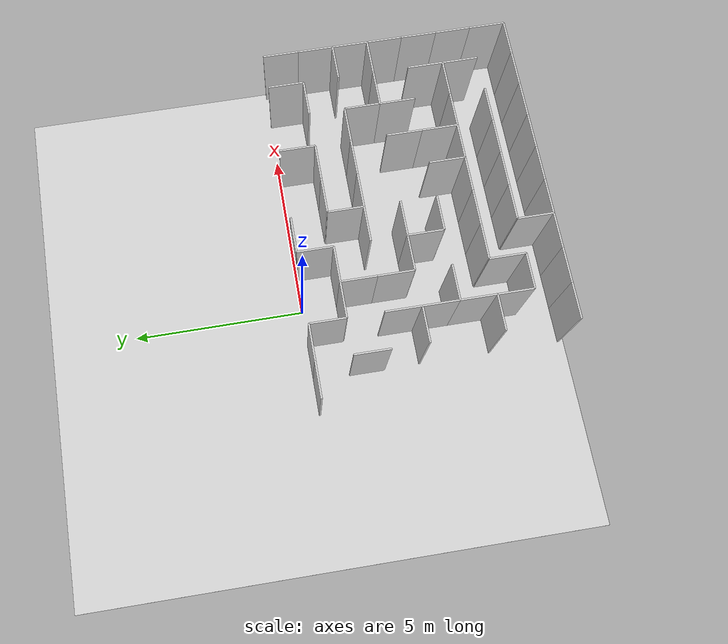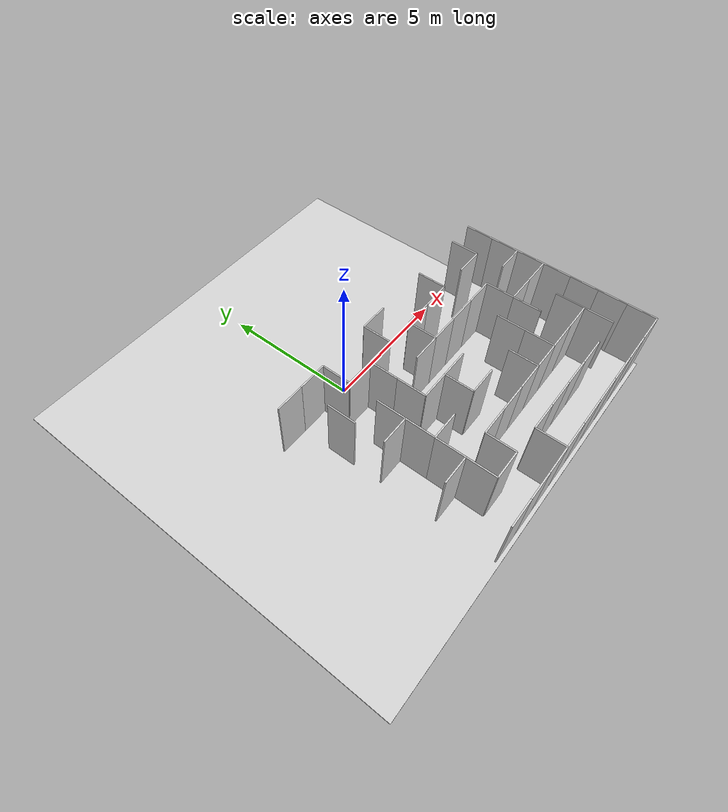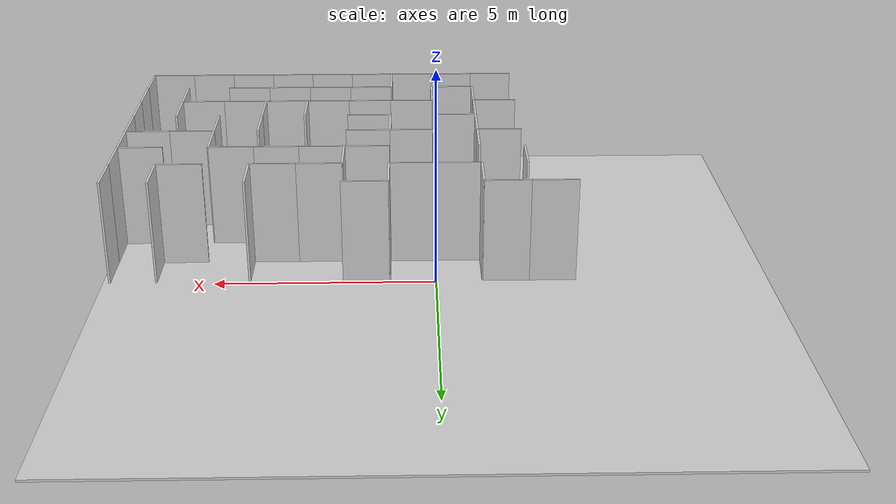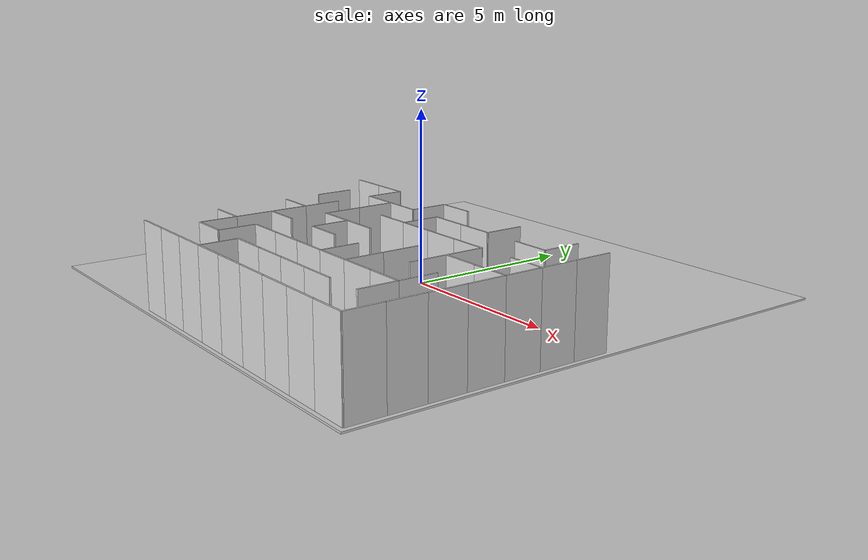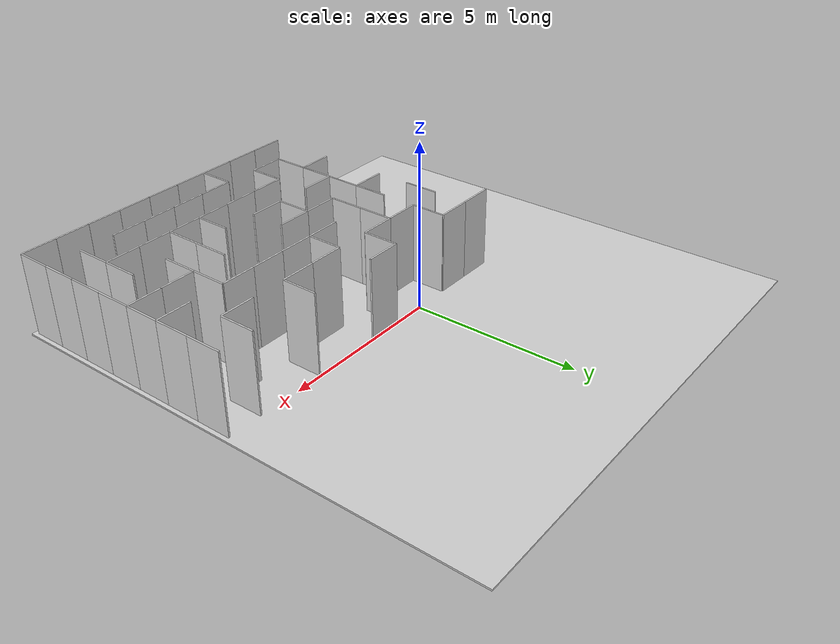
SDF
<sdf version="1.10">
 <world name="nidar_layer1_maze">
  <model name="floor">
   <static>true</static>
   <pose>0.0000 0.0000 0.0250 0 0 0</pose>
   <link name="link">
    <collision name="collision"><geometry><box><size>15.0000 15.0000 0.0500</size></box></geometry></collision>
    <visual name="visual">
     <geometry><box><size>15.0000 15.0000 0.0500</size></box></geometry>
     <material><ambient>0.72 0.72 0.72 1</ambient><diffuse>0.82 0.82 0.82 1</diffuse></material>
    </visual>
   </link>
  </model>
  <model name="vwall_08_00">
   <static>true</static>
   <pose>1.0500 -6.8250 1.2500 0 0 0</pose>
   <link name="link">
    <collision name="collision"><geometry><box><size>0.0500 1.0500 2.5000</size></box></geometry></collision>
    <visual name="visual">
     <geometry><box><size>0.0500 1.0500 2.5000</size></box></geometry>
     <material><ambient>0.72 0.72 0.72 1</ambient><diffuse>0.82 0.82 0.82 1</diffuse></material>
    </visual>
   </link>
  </model>
  <model name="vwall_14_00">
   <static>true</static>
   <pose>7.3500 -6.8250 1.2500 0 0 0</pose>
   <link name="link">
    <collision name="collision"><geometry><box><size>0.0500 1.0500 2.5000</size></box></geometry></collision>
    <visual name="visual">
     <geometry><box><size>0.0500 1.0500 2.5000</size></box></geometry>
     <material><ambient>0.72 0.72 0.72 1</ambient><diffuse>0.82 0.82 0.82 1</diffuse></material>
    </visual>
   </link>
  </model>
  <model name="vwall_06_01">
   <static>true</static>
   <pose>-1.0500 -5.7750 1.2500 0 0 0</pose>
   <link name="link">
    <collision name="collision"><geometry><box><size>0.0500 1.0500 2.5000</size></box></geometry></collision>
    <visual name="visual">
     <geometry><box><size>0.0500 1.0500 2.5000</size></box></geometry>
     <material><ambient>0.72 0.72 0.72 1</ambient><diffuse>0.82 0.82 0.82 1</diffuse></material>
    </visual>
   </link>
  </model>
  <model name="vwall_07_01">
   <static>true</static>
   <pose>0.0000 -5.7750 1.2500 0 0 0</pose>
   <link name="link">
    <collision name="collision"><geometry><box><size>0.0500 1.0500 2.5000</size></box></geometry></collision>
    <visual name="visual">
     <geometry><box><size>0.0500 1.0500 2.5000</size></box></geometry>
     <material><ambient>0.72 0.72 0.72 1</ambient><diffuse>0.82 0.82 0.82 1</diffuse></material>
    </visual>
   </link>
  </model>
  <model name="vwall_13_01">
   <static>true</static>
   <pose>6.3000 -5.7750 1.2500 0 0 0</pose>
   <link name="link">
    <collision name="collision"><geometry><box><size>0.0500 1.0500 2.5000</size></box></geometry></collision>
    <visual name="visual">
     <geometry><box><size>0.0500 1.0500 2.5000</size></box></geometry>
     <material><ambient>0.72 0.72 0.72 1</ambient><diffuse>0.82 0.82 0.82 1</diffuse></material>
    </visual>
   </link>
  </model>
  <model name="vwall_14_01">
   <static>true</static>
   <pose>7.3500 -5.7750 1.2500 0 0 0</pose>
   <link name="link">
    <collision name="collision"><geometry><box><size>0.0500 1.0500 2.5000</size></box></geometry></collision>
    <visual name="visual">
     <geometry><box><size>0.0500 1.0500 2.5000</size></box></geometry>
     <material><ambient>0.72 0.72 0.72 1</ambient><diffuse>0.82 0.82 0.82 1</diffuse></material>
    </visual>
   </link>
  </model>
  <model name="vwall_06_02">
   <static>true</static>
   <pose>-1.0500 -4.7250 1.2500 0 0 0</pose>
   <link name="link">
    <collision name="collision"><geometry><box><size>0.0500 1.0500 2.5000</size></box></geometry></collision>
    <visual name="visual">
     <geometry><box><size>0.0500 1.0500 2.5000</size></box></geometry>
     <material><ambient>0.72 0.72 0.72 1</ambient><diffuse>0.82 0.82 0.82 1</diffuse></material>
    </visual>
   </link>
  </model>
  <model name="vwall_10_02">
   <static>true</static>
   <pose>3.1500 -4.7250 1.2500 0 0 0</pose>
   <link name="link">
    <collision name="collision"><geometry><box><size>0.0500 1.0500 2.5000</size></box></geometry></collision>
    <visual name="visual">
     <geometry><box><size>0.0500 1.0500 2.5000</size></box></geometry>
     <material><ambient>0.72 0.72 0.72 1</ambient><diffuse>0.82 0.82 0.82 1</diffuse></material>
    </visual>
   </link>
  </model>
  <model name="vwall_11_02">
   <static>true</static>
   <pose>4.2000 -4.7250 1.2500 0 0 0</pose>
   <link name="link">
    <collision name="collision"><geometry><box><size>0.0500 1.0500 2.5000</size></box></geometry></collision>
    <visual name="visual">
     <geometry><box><size>0.0500 1.0500 2.5000</size></box></geometry>
     <material><ambient>0.72 0.72 0.72 1</ambient><diffuse>0.82 0.82 0.82 1</diffuse></material>
    </visual>
   </link>
  </model>
  <model name="vwall_13_02">
   <static>true</static>
   <pose>6.3000 -4.7250 1.2500 0 0 0</pose>
   <link name="link">
    <collision name="collision"><geometry><box><size>0.0500 1.0500 2.5000</size></box></geometry></collision>
    <visual name="visual">
     <geometry><box><size>0.0500 1.0500 2.5000</size></box></geometry>
     <material><ambient>0.72 0.72 0.72 1</ambient><diffuse>0.82 0.82 0.82 1</diffuse></material>
    </visual>
   </link>
  </model>
  <model name="vwall_14_02">
   <static>true</static>
   <pose>7.3500 -4.7250 1.2500 0 0 0</pose>
   <link name="link">
    <collision name="collision"><geometry><box><size>0.0500 1.0500 2.5000</size></box></geometry></collision>
    <visual name="visual">
     <geometry><box><size>0.0500 1.0500 2.5000</size></box></geometry>
     <material><ambient>0.72 0.72 0.72 1</ambient><diffuse>0.82 0.82 0.82 1</diffuse></material>
    </visual>
   </link>
  </model>
  <model name="vwall_06_03">
   <static>true</static>
   <pose>-1.0500 -3.6750 1.2500 0 0 0</pose>
   <link name="link">
    <collision name="collision"><geometry><box><size>0.0500 1.0500 2.5000</size></box></geometry></collision>
    <visual name="visual">
     <geometry><box><size>0.0500 1.0500 2.5000</size></box></geometry>
     <material><ambient>0.72 0.72 0.72 1</ambient><diffuse>0.82 0.82 0.82 1</diffuse></material>
    </visual>
   </link>
  </model>
  <model name="vwall_08_03">
   <static>true</static>
   <pose>1.0500 -3.6750 1.2500 0 0 0</pose>
   <link name="link">
    <collision name="collision"><geometry><box><size>0.0500 1.0500 2.5000</size></box></geometry></collision>
    <visual name="visual">
     <geometry><box><size>0.0500 1.0500 2.5000</size></box></geometry>
     <material><ambient>0.72 0.72 0.72 1</ambient><diffuse>0.82 0.82 0.82 1</diffuse></material>
    </visual>
   </link>
  </model>
  <model name="vwall_11_03">
   <static>true</static>
   <pose>4.2000 -3.6750 1.2500 0 0 0</pose>
   <link name="link">
    <collision name="collision"><geometry><box><size>0.0500 1.0500 2.5000</size></box></geometry></collision>
    <visual name="visual">
     <geometry><box><size>0.0500 1.0500 2.5000</size></box></geometry>
     <material><ambient>0.72 0.72 0.72 1</ambient><diffuse>0.82 0.82 0.82 1</diffuse></material>
    </visual>
   </link>
  </model>
  <model name="vwall_12_03">
   <static>true</static>
   <pose>5.2500 -3.6750 1.2500 0 0 0</pose>
   <link name="link">
    <collision name="collision"><geometry><box><size>0.0500 1.0500 2.5000</size></box></geometry></collision>
    <visual name="visual">
     <geometry><box><size>0.0500 1.0500 2.5000</size></box></geometry>
     <material><ambient>0.72 0.72 0.72 1</ambient><diffuse>0.82 0.82 0.82 1</diffuse></material>
    </visual>
   </link>
  </model>
  <model name="vwall_14_03">
   <static>true</static>
   <pose>7.3500 -3.6750 1.2500 0 0 0</pose>
   <link name="link">
    <collision name="collision"><geometry><box><size>0.0500 1.0500 2.5000</size></box></geometry></collision>
    <visual name="visual">
     <geometry><box><size>0.0500 1.0500 2.5000</size></box></geometry>
     <material><ambient>0.72 0.72 0.72 1</ambient><diffuse>0.82 0.82 0.82 1</diffuse></material>
    </visual>
   </link>
  </model>
  <model name="vwall_06_04">
   <static>true</static>
   <pose>-1.0500 -2.6250 1.2500 0 0 0</pose>
   <link name="link">
    <collision name="collision"><geometry><box><size>0.0500 1.0500 2.5000</size></box></geometry></collision>
    <visual name="visual">
     <geometry><box><size>0.0500 1.0500 2.5000</size></box></geometry>
     <material><ambient>0.72 0.72 0.72 1</ambient><diffuse>0.82 0.82 0.82 1</diffuse></material>
    </visual>
   </link>
  </model>
  <model name="vwall_07_04">
   <static>true</static>
   <pose>0.0000 -2.6250 1.2500 0 0 0</pose>
   <link name="link">
    <collision name="collision"><geometry><box><size>0.0500 1.0500 2.5000</size></box></geometry></collision>
    <visual name="visual">
     <geometry><box><size>0.0500 1.0500 2.5000</size></box></geometry>
     <material><ambient>0.72 0.72 0.72 1</ambient><diffuse>0.82 0.82 0.82 1</diffuse></material>
    </visual>
   </link>
  </model>
  <model name="vwall_12_04">
   <static>true</static>
   <pose>5.2500 -2.6250 1.2500 0 0 0</pose>
   <link name="link">
    <collision name="collision"><geometry><box><size>0.0500 1.0500 2.5000</size></box></geometry></collision>
    <visual name="visual">
     <geometry><box><size>0.0500 1.0500 2.5000</size></box></geometry>
     <material><ambient>0.72 0.72 0.72 1</ambient><diffuse>0.82 0.82 0.82 1</diffuse></material>
    </visual>
   </link>
  </model>
  <model name="vwall_14_04">
   <static>true</static>
   <pose>7.3500 -2.6250 1.2500 0 0 0</pose>
   <link name="link">
    <collision name="collision"><geometry><box><size>0.0500 1.0500 2.5000</size></box></geometry></collision>
    <visual name="visual">
     <geometry><box><size>0.0500 1.0500 2.5000</size></box></geometry>
     <material><ambient>0.72 0.72 0.72 1</ambient><diffuse>0.82 0.82 0.82 1</diffuse></material>
    </visual>
   </link>
  </model>
  <model name="vwall_05_05">
   <static>true</static>
   <pose>-2.1000 -1.5750 1.2500 0 0 0</pose>
   <link name="link">
    <collision name="collision"><geometry><box><size>0.0500 1.0500 2.5000</size></box></geometry></collision>
    <visual name="visual">
     <geometry><box><size>0.0500 1.0500 2.5000</size></box></geometry>
     <material><ambient>0.72 0.72 0.72 1</ambient><diffuse>0.82 0.82 0.82 1</diffuse></material>
    </visual>
   </link>
  </model>
  <model name="vwall_07_05">
   <static>true</static>
   <pose>0.0000 -1.5750 1.2500 0 0 0</pose>
   <link name="link">
    <collision name="collision"><geometry><box><size>0.0500 1.0500 2.5000</size></box></geometry></collision>
    <visual name="visual">
     <geometry><box><size>0.0500 1.0500 2.5000</size></box></geometry>
     <material><ambient>0.72 0.72 0.72 1</ambient><diffuse>0.82 0.82 0.82 1</diffuse></material>
    </visual>
   </link>
  </model>
  <model name="vwall_09_05">
   <static>true</static>
   <pose>2.1000 -1.5750 1.2500 0 0 0</pose>
   <link name="link">
    <collision name="collision"><geometry><box><size>0.0500 1.0500 2.5000</size></box></geometry></collision>
    <visual name="visual">
     <geometry><box><size>0.0500 1.0500 2.5000</size></box></geometry>
     <material><ambient>0.72 0.72 0.72 1</ambient><diffuse>0.82 0.82 0.82 1</diffuse></material>
    </visual>
   </link>
  </model>
  <model name="vwall_14_05">
   <static>true</static>
   <pose>7.3500 -1.5750 1.2500 0 0 0</pose>
   <link name="link">
    <collision name="collision"><geometry><box><size>0.0500 1.0500 2.5000</size></box></geometry></collision>
    <visual name="visual">
     <geometry><box><size>0.0500 1.0500 2.5000</size></box></geometry>
     <material><ambient>0.72 0.72 0.72 1</ambient><diffuse>0.82 0.82 0.82 1</diffuse></material>
    </visual>
   </link>
  </model>
  <model name="vwall_06_06">
   <static>true</static>
   <pose>-1.0500 -0.5250 1.2500 0 0 0</pose>
   <link name="link">
    <collision name="collision"><geometry><box><size>0.0500 1.0500 2.5000</size></box></geometry></collision>
    <visual name="visual">
     <geometry><box><size>0.0500 1.0500 2.5000</size></box></geometry>
     <material><ambient>0.72 0.72 0.72 1</ambient><diffuse>0.82 0.82 0.82 1</diffuse></material>
    </visual>
   </link>
  </model>
  <model name="vwall_08_06">
   <static>true</static>
   <pose>1.0500 -0.5250 1.2500 0 0 0</pose>
   <link name="link">
    <collision name="collision"><geometry><box><size>0.0500 1.0500 2.5000</size></box></geometry></collision>
    <visual name="visual">
     <geometry><box><size>0.0500 1.0500 2.5000</size></box></geometry>
     <material><ambient>0.72 0.72 0.72 1</ambient><diffuse>0.82 0.82 0.82 1</diffuse></material>
    </visual>
   </link>
  </model>
  <model name="vwall_11_06">
   <static>true</static>
   <pose>4.2000 -0.5250 1.2500 0 0 0</pose>
   <link name="link">
    <collision name="collision"><geometry><box><size>0.0500 1.0500 2.5000</size></box></geometry></collision>
    <visual name="visual">
     <geometry><box><size>0.0500 1.0500 2.5000</size></box></geometry>
     <material><ambient>0.72 0.72 0.72 1</ambient><diffuse>0.82 0.82 0.82 1</diffuse></material>
    </visual>
   </link>
  </model>
  <model name="vwall_13_06">
   <static>true</static>
   <pose>6.3000 -0.5250 1.2500 0 0 0</pose>
   <link name="link">
    <collision name="collision"><geometry><box><size>0.0500 1.0500 2.5000</size></box></geometry></collision>
    <visual name="visual">
     <geometry><box><size>0.0500 1.0500 2.5000</size></box></geometry>
     <material><ambient>0.72 0.72 0.72 1</ambient><diffuse>0.82 0.82 0.82 1</diffuse></material>
    </visual>
   </link>
  </model>
  <model name="vwall_14_06">
   <static>true</static>
   <pose>7.3500 -0.5250 1.2500 0 0 0</pose>
   <link name="link">
    <collision name="collision"><geometry><box><size>0.0500 1.0500 2.5000</size></box></geometry></collision>
    <visual name="visual">
     <geometry><box><size>0.0500 1.0500 2.5000</size></box></geometry>
     <material><ambient>0.72 0.72 0.72 1</ambient><diffuse>0.82 0.82 0.82 1</diffuse></material>
    </visual>
   </link>
  </model>
  <model name="hwall_05_00">
   <static>true</static>
   <pose>-1.5750 -7.3500 1.2500 0 0 0</pose>
   <link name="link">
    <collision name="collision"><geometry><box><size>1.0500 0.0500 2.5000</size></box></geometry></collision>
    <visual name="visual">
     <geometry><box><size>1.0500 0.0500 2.5000</size></box></geometry>
     <material><ambient>0.72 0.72 0.72 1</ambient><diffuse>0.82 0.82 0.82 1</diffuse></material>
    </visual>
   </link>
  </model>
  <model name="hwall_06_00">
   <static>true</static>
   <pose>-0.5250 -7.3500 1.2500 0 0 0</pose>
   <link name="link">
    <collision name="collision"><geometry><box><size>1.0500 0.0500 2.5000</size></box></geometry></collision>
    <visual name="visual">
     <geometry><box><size>1.0500 0.0500 2.5000</size></box></geometry>
     <material><ambient>0.72 0.72 0.72 1</ambient><diffuse>0.82 0.82 0.82 1</diffuse></material>
    </visual>
   </link>
  </model>
  <model name="hwall_07_00">
   <static>true</static>
   <pose>0.5250 -7.3500 1.2500 0 0 0</pose>
   <link name="link">
    <collision name="collision"><geometry><box><size>1.0500 0.0500 2.5000</size></box></geometry></collision>
    <visual name="visual">
     <geometry><box><size>1.0500 0.0500 2.5000</size></box></geometry>
     <material><ambient>0.72 0.72 0.72 1</ambient><diffuse>0.82 0.82 0.82 1</diffuse></material>
    </visual>
   </link>
  </model>
  <model name="hwall_08_00">
   <static>true</static>
   <pose>1.5750 -7.3500 1.2500 0 0 0</pose>
   <link name="link">
    <collision name="collision"><geometry><box><size>1.0500 0.0500 2.5000</size></box></geometry></collision>
    <visual name="visual">
     <geometry><box><size>1.0500 0.0500 2.5000</size></box></geometry>
     <material><ambient>0.72 0.72 0.72 1</ambient><diffuse>0.82 0.82 0.82 1</diffuse></material>
    </visual>
   </link>
  </model>
  <model name="hwall_09_00">
   <static>true</static>
   <pose>2.6250 -7.3500 1.2500 0 0 0</pose>
   <link name="link">
    <collision name="collision"><geometry><box><size>1.0500 0.0500 2.5000</size></box></geometry></collision>
    <visual name="visual">
     <geometry><box><size>1.0500 0.0500 2.5000</size></box></geometry>
     <material><ambient>0.72 0.72 0.72 1</ambient><diffuse>0.82 0.82 0.82 1</diffuse></material>
    </visual>
   </link>
  </model>
  <model name="hwall_10_00">
   <static>true</static>
   <pose>3.6750 -7.3500 1.2500 0 0 0</pose>
   <link name="link">
    <collision name="collision"><geometry><box><size>1.0500 0.0500 2.5000</size></box></geometry></collision>
    <visual name="visual">
     <geometry><box><size>1.0500 0.0500 2.5000</size></box></geometry>
     <material><ambient>0.72 0.72 0.72 1</ambient><diffuse>0.82 0.82 0.82 1</diffuse></material>
    </visual>
   </link>
  </model>
  <model name="hwall_11_00">
   <static>true</static>
   <pose>4.7250 -7.3500 1.2500 0 0 0</pose>
   <link name="link">
    <collision name="collision"><geometry><box><size>1.0500 0.0500 2.5000</size></box></geometry></collision>
    <visual name="visual">
     <geometry><box><size>1.0500 0.0500 2.5000</size></box></geometry>
     <material><ambient>0.72 0.72 0.72 1</ambient><diffuse>0.82 0.82 0.82 1</diffuse></material>
    </visual>
   </link>
  </model>
  <model name="hwall_12_00">
   <static>true</static>
   <pose>5.7750 -7.3500 1.2500 0 0 0</pose>
   <link name="link">
    <collision name="collision"><geometry><box><size>1.0500 0.0500 2.5000</size></box></geometry></collision>
    <visual name="visual">
     <geometry><box><size>1.0500 0.0500 2.5000</size></box></geometry>
     <material><ambient>0.72 0.72 0.72 1</ambient><diffuse>0.82 0.82 0.82 1</diffuse></material>
    </visual>
   </link>
  </model>
  <model name="hwall_13_00">
   <static>true</static>
   <pose>6.8250 -7.3500 1.2500 0 0 0</pose>
   <link name="link">
    <collision name="collision"><geometry><box><size>1.0500 0.0500 2.5000</size></box></geometry></collision>
    <visual name="visual">
     <geometry><box><size>1.0500 0.0500 2.5000</size></box></geometry>
     <material><ambient>0.72 0.72 0.72 1</ambient><diffuse>0.82 0.82 0.82 1</diffuse></material>
    </visual>
   </link>
  </model>
  <model name="hwall_06_01">
   <static>true</static>
   <pose>-0.5250 -6.3000 1.2500 0 0 0</pose>
   <link name="link">
    <collision name="collision"><geometry><box><size>1.0500 0.0500 2.5000</size></box></geometry></collision>
    <visual name="visual">
     <geometry><box><size>1.0500 0.0500 2.5000</size></box></geometry>
     <material><ambient>0.72 0.72 0.72 1</ambient><diffuse>0.82 0.82 0.82 1</diffuse></material>
    </visual>
   </link>
  </model>
  <model name="hwall_08_01">
   <static>true</static>
   <pose>1.5750 -6.3000 1.2500 0 0 0</pose>
   <link name="link">
    <collision name="collision"><geometry><box><size>1.0500 0.0500 2.5000</size></box></geometry></collision>
    <visual name="visual">
     <geometry><box><size>1.0500 0.0500 2.5000</size></box></geometry>
     <material><ambient>0.72 0.72 0.72 1</ambient><diffuse>0.82 0.82 0.82 1</diffuse></material>
    </visual>
   </link>
  </model>
  <model name="hwall_09_01">
   <static>true</static>
   <pose>2.6250 -6.3000 1.2500 0 0 0</pose>
   <link name="link">
    <collision name="collision"><geometry><box><size>1.0500 0.0500 2.5000</size></box></geometry></collision>
    <visual name="visual">
     <geometry><box><size>1.0500 0.0500 2.5000</size></box></geometry>
     <material><ambient>0.72 0.72 0.72 1</ambient><diffuse>0.82 0.82 0.82 1</diffuse></material>
    </visual>
   </link>
  </model>
  <model name="hwall_10_01">
   <static>true</static>
   <pose>3.6750 -6.3000 1.2500 0 0 0</pose>
   <link name="link">
    <collision name="collision"><geometry><box><size>1.0500 0.0500 2.5000</size></box></geometry></collision>
    <visual name="visual">
     <geometry><box><size>1.0500 0.0500 2.5000</size></box></geometry>
     <material><ambient>0.72 0.72 0.72 1</ambient><diffuse>0.82 0.82 0.82 1</diffuse></material>
    </visual>
   </link>
  </model>
  <model name="hwall_11_01">
   <static>true</static>
   <pose>4.7250 -6.3000 1.2500 0 0 0</pose>
   <link name="link">
    <collision name="collision"><geometry><box><size>1.0500 0.0500 2.5000</size></box></geometry></collision>
    <visual name="visual">
     <geometry><box><size>1.0500 0.0500 2.5000</size></box></geometry>
     <material><ambient>0.72 0.72 0.72 1</ambient><diffuse>0.82 0.82 0.82 1</diffuse></material>
    </visual>
   </link>
  </model>
  <model name="hwall_05_02">
   <static>true</static>
   <pose>-1.5750 -5.2500 1.2500 0 0 0</pose>
   <link name="link">
    <collision name="collision"><geometry><box><size>1.0500 0.0500 2.5000</size></box></geometry></collision>
    <visual name="visual">
     <geometry><box><size>1.0500 0.0500 2.5000</size></box></geometry>
     <material><ambient>0.72 0.72 0.72 1</ambient><diffuse>0.82 0.82 0.82 1</diffuse></material>
    </visual>
   </link>
  </model>
  <model name="hwall_07_02">
   <static>true</static>
   <pose>0.5250 -5.2500 1.2500 0 0 0</pose>
   <link name="link">
    <collision name="collision"><geometry><box><size>1.0500 0.0500 2.5000</size></box></geometry></collision>
    <visual name="visual">
     <geometry><box><size>1.0500 0.0500 2.5000</size></box></geometry>
     <material><ambient>0.72 0.72 0.72 1</ambient><diffuse>0.82 0.82 0.82 1</diffuse></material>
    </visual>
   </link>
  </model>
  <model name="hwall_08_02">
   <static>true</static>
   <pose>1.5750 -5.2500 1.2500 0 0 0</pose>
   <link name="link">
    <collision name="collision"><geometry><box><size>1.0500 0.0500 2.5000</size></box></geometry></collision>
    <visual name="visual">
     <geometry><box><size>1.0500 0.0500 2.5000</size></box></geometry>
     <material><ambient>0.72 0.72 0.72 1</ambient><diffuse>0.82 0.82 0.82 1</diffuse></material>
    </visual>
   </link>
  </model>
  <model name="hwall_09_02">
   <static>true</static>
   <pose>2.6250 -5.2500 1.2500 0 0 0</pose>
   <link name="link">
    <collision name="collision"><geometry><box><size>1.0500 0.0500 2.5000</size></box></geometry></collision>
    <visual name="visual">
     <geometry><box><size>1.0500 0.0500 2.5000</size></box></geometry>
     <material><ambient>0.72 0.72 0.72 1</ambient><diffuse>0.82 0.82 0.82 1</diffuse></material>
    </visual>
   </link>
  </model>
  <model name="hwall_10_02">
   <static>true</static>
   <pose>3.6750 -5.2500 1.2500 0 0 0</pose>
   <link name="link">
    <collision name="collision"><geometry><box><size>1.0500 0.0500 2.5000</size></box></geometry></collision>
    <visual name="visual">
     <geometry><box><size>1.0500 0.0500 2.5000</size></box></geometry>
     <material><ambient>0.72 0.72 0.72 1</ambient><diffuse>0.82 0.82 0.82 1</diffuse></material>
    </visual>
   </link>
  </model>
  <model name="hwall_11_02">
   <static>true</static>
   <pose>4.7250 -5.2500 1.2500 0 0 0</pose>
   <link name="link">
    <collision name="collision"><geometry><box><size>1.0500 0.0500 2.5000</size></box></geometry></collision>
    <visual name="visual">
     <geometry><box><size>1.0500 0.0500 2.5000</size></box></geometry>
     <material><ambient>0.72 0.72 0.72 1</ambient><diffuse>0.82 0.82 0.82 1</diffuse></material>
    </visual>
   </link>
  </model>
  <model name="hwall_12_02">
   <static>true</static>
   <pose>5.7750 -5.2500 1.2500 0 0 0</pose>
   <link name="link">
    <collision name="collision"><geometry><box><size>1.0500 0.0500 2.5000</size></box></geometry></collision>
    <visual name="visual">
     <geometry><box><size>1.0500 0.0500 2.5000</size></box></geometry>
     <material><ambient>0.72 0.72 0.72 1</ambient><diffuse>0.82 0.82 0.82 1</diffuse></material>
    </visual>
   </link>
  </model>
  <model name="hwall_06_03">
   <static>true</static>
   <pose>-0.5250 -4.2000 1.2500 0 0 0</pose>
   <link name="link">
    <collision name="collision"><geometry><box><size>1.0500 0.0500 2.5000</size></box></geometry></collision>
    <visual name="visual">
     <geometry><box><size>1.0500 0.0500 2.5000</size></box></geometry>
     <material><ambient>0.72 0.72 0.72 1</ambient><diffuse>0.82 0.82 0.82 1</diffuse></material>
    </visual>
   </link>
  </model>
  <model name="hwall_08_03">
   <static>true</static>
   <pose>1.5750 -4.2000 1.2500 0 0 0</pose>
   <link name="link">
    <collision name="collision"><geometry><box><size>1.0500 0.0500 2.5000</size></box></geometry></collision>
    <visual name="visual">
     <geometry><box><size>1.0500 0.0500 2.5000</size></box></geometry>
     <material><ambient>0.72 0.72 0.72 1</ambient><diffuse>0.82 0.82 0.82 1</diffuse></material>
    </visual>
   </link>
  </model>
  <model name="hwall_05_04">
   <static>true</static>
   <pose>-1.5750 -3.1500 1.2500 0 0 0</pose>
   <link name="link">
    <collision name="collision"><geometry><box><size>1.0500 0.0500 2.5000</size></box></geometry></collision>
    <visual name="visual">
     <geometry><box><size>1.0500 0.0500 2.5000</size></box></geometry>
     <material><ambient>0.72 0.72 0.72 1</ambient><diffuse>0.82 0.82 0.82 1</diffuse></material>
    </visual>
   </link>
  </model>
  <model name="hwall_07_04">
   <static>true</static>
   <pose>0.5250 -3.1500 1.2500 0 0 0</pose>
   <link name="link">
    <collision name="collision"><geometry><box><size>1.0500 0.0500 2.5000</size></box></geometry></collision>
    <visual name="visual">
     <geometry><box><size>1.0500 0.0500 2.5000</size></box></geometry>
     <material><ambient>0.72 0.72 0.72 1</ambient><diffuse>0.82 0.82 0.82 1</diffuse></material>
    </visual>
   </link>
  </model>
  <model name="hwall_08_04">
   <static>true</static>
   <pose>1.5750 -3.1500 1.2500 0 0 0</pose>
   <link name="link">
    <collision name="collision"><geometry><box><size>1.0500 0.0500 2.5000</size></box></geometry></collision>
    <visual name="visual">
     <geometry><box><size>1.0500 0.0500 2.5000</size></box></geometry>
     <material><ambient>0.72 0.72 0.72 1</ambient><diffuse>0.82 0.82 0.82 1</diffuse></material>
    </visual>
   </link>
  </model>
  <model name="hwall_12_04">
   <static>true</static>
   <pose>5.7750 -3.1500 1.2500 0 0 0</pose>
   <link name="link">
    <collision name="collision"><geometry><box><size>1.0500 0.0500 2.5000</size></box></geometry></collision>
    <visual name="visual">
     <geometry><box><size>1.0500 0.0500 2.5000</size></box></geometry>
     <material><ambient>0.72 0.72 0.72 1</ambient><diffuse>0.82 0.82 0.82 1</diffuse></material>
    </visual>
   </link>
  </model>
  <model name="hwall_13_04">
   <static>true</static>
   <pose>6.8250 -3.1500 1.2500 0 0 0</pose>
   <link name="link">
    <collision name="collision"><geometry><box><size>1.0500 0.0500 2.5000</size></box></geometry></collision>
    <visual name="visual">
     <geometry><box><size>1.0500 0.0500 2.5000</size></box></geometry>
     <material><ambient>0.72 0.72 0.72 1</ambient><diffuse>0.82 0.82 0.82 1</diffuse></material>
    </visual>
   </link>
  </model>
  <model name="hwall_08_05">
   <static>true</static>
   <pose>1.5750 -2.1000 1.2500 0 0 0</pose>
   <link name="link">
    <collision name="collision"><geometry><box><size>1.0500 0.0500 2.5000</size></box></geometry></collision>
    <visual name="visual">
     <geometry><box><size>1.0500 0.0500 2.5000</size></box></geometry>
     <material><ambient>0.72 0.72 0.72 1</ambient><diffuse>0.82 0.82 0.82 1</diffuse></material>
    </visual>
   </link>
  </model>
  <model name="hwall_09_05">
   <static>true</static>
   <pose>2.6250 -2.1000 1.2500 0 0 0</pose>
   <link name="link">
    <collision name="collision"><geometry><box><size>1.0500 0.0500 2.5000</size></box></geometry></collision>
    <visual name="visual">
     <geometry><box><size>1.0500 0.0500 2.5000</size></box></geometry>
     <material><ambient>0.72 0.72 0.72 1</ambient><diffuse>0.82 0.82 0.82 1</diffuse></material>
    </visual>
   </link>
  </model>
  <model name="hwall_10_05">
   <static>true</static>
   <pose>3.6750 -2.1000 1.2500 0 0 0</pose>
   <link name="link">
    <collision name="collision"><geometry><box><size>1.0500 0.0500 2.5000</size></box></geometry></collision>
    <visual name="visual">
     <geometry><box><size>1.0500 0.0500 2.5000</size></box></geometry>
     <material><ambient>0.72 0.72 0.72 1</ambient><diffuse>0.82 0.82 0.82 1</diffuse></material>
    </visual>
   </link>
  </model>
  <model name="hwall_11_05">
   <static>true</static>
   <pose>4.7250 -2.1000 1.2500 0 0 0</pose>
   <link name="link">
    <collision name="collision"><geometry><box><size>1.0500 0.0500 2.5000</size></box></geometry></collision>
    <visual name="visual">
     <geometry><box><size>1.0500 0.0500 2.5000</size></box></geometry>
     <material><ambient>0.72 0.72 0.72 1</ambient><diffuse>0.82 0.82 0.82 1</diffuse></material>
    </visual>
   </link>
  </model>
  <model name="hwall_13_05">
   <static>true</static>
   <pose>6.8250 -2.1000 1.2500 0 0 0</pose>
   <link name="link">
    <collision name="collision"><geometry><box><size>1.0500 0.0500 2.5000</size></box></geometry></collision>
    <visual name="visual">
     <geometry><box><size>1.0500 0.0500 2.5000</size></box></geometry>
     <material><ambient>0.72 0.72 0.72 1</ambient><diffuse>0.82 0.82 0.82 1</diffuse></material>
    </visual>
   </link>
  </model>
  <model name="hwall_06_06">
   <static>true</static>
   <pose>-0.5250 -1.0500 1.2500 0 0 0</pose>
   <link name="link">
    <collision name="collision"><geometry><box><size>1.0500 0.0500 2.5000</size></box></geometry></collision>
    <visual name="visual">
     <geometry><box><size>1.0500 0.0500 2.5000</size></box></geometry>
     <material><ambient>0.72 0.72 0.72 1</ambient><diffuse>0.82 0.82 0.82 1</diffuse></material>
    </visual>
   </link>
  </model>
  <model name="hwall_07_06">
   <static>true</static>
   <pose>0.5250 -1.0500 1.2500 0 0 0</pose>
   <link name="link">
    <collision name="collision"><geometry><box><size>1.0500 0.0500 2.5000</size></box></geometry></collision>
    <visual name="visual">
     <geometry><box><size>1.0500 0.0500 2.5000</size></box></geometry>
     <material><ambient>0.72 0.72 0.72 1</ambient><diffuse>0.82 0.82 0.82 1</diffuse></material>
    </visual>
   </link>
  </model>
  <model name="hwall_09_06">
   <static>true</static>
   <pose>2.6250 -1.0500 1.2500 0 0 0</pose>
   <link name="link">
    <collision name="collision"><geometry><box><size>1.0500 0.0500 2.5000</size></box></geometry></collision>
    <visual name="visual">
     <geometry><box><size>1.0500 0.0500 2.5000</size></box></geometry>
     <material><ambient>0.72 0.72 0.72 1</ambient><diffuse>0.82 0.82 0.82 1</diffuse></material>
    </visual>
   </link>
  </model>
  <model name="hwall_10_06">
   <static>true</static>
   <pose>3.6750 -1.0500 1.2500 0 0 0</pose>
   <link name="link">
    <collision name="collision"><geometry><box><size>1.0500 0.0500 2.5000</size></box></geometry></collision>
    <visual name="visual">
     <geometry><box><size>1.0500 0.0500 2.5000</size></box></geometry>
     <material><ambient>0.72 0.72 0.72 1</ambient><diffuse>0.82 0.82 0.82 1</diffuse></material>
    </visual>
   </link>
  </model>
  <model name="hwall_12_06">
   <static>true</static>
   <pose>5.7750 -1.0500 1.2500 0 0 0</pose>
   <link name="link">
    <collision name="collision"><geometry><box><size>1.0500 0.0500 2.5000</size></box></geometry></collision>
    <visual name="visual">
     <geometry><box><size>1.0500 0.0500 2.5000</size></box></geometry>
     <material><ambient>0.72 0.72 0.72 1</ambient><diffuse>0.82 0.82 0.82 1</diffuse></material>
    </visual>
   </link>
  </model>
  <model name="hwall_04_07">
   <static>true</static>
   <pose>-2.6250 0.0000 1.2500 0 0 0</pose>
   <link name="link">
    <collision name="collision"><geometry><box><size>1.0500 0.0500 2.5000</size></box></geometry></collision>
    <visual name="visual">
     <geometry><box><size>1.0500 0.0500 2.5000</size></box></geometry>
     <material><ambient>0.72 0.72 0.72 1</ambient><diffuse>0.82 0.82 0.82 1</diffuse></material>
    </visual>
   </link>
  </model>
  <model name="hwall_05_07">
   <static>true</static>
   <pose>-1.5750 0.0000 1.2500 0 0 0</pose>
   <link name="link">
    <collision name="collision"><geometry><box><size>1.0500 0.0500 2.5000</size></box></geometry></collision>
    <visual name="visual">
     <geometry><box><size>1.0500 0.0500 2.5000</size></box></geometry>
     <material><ambient>0.72 0.72 0.72 1</ambient><diffuse>0.82 0.82 0.82 1</diffuse></material>
    </visual>
   </link>
  </model>
  <model name="hwall_08_07">
   <static>true</static>
   <pose>1.5750 0.0000 1.2500 0 0 0</pose>
   <link name="link">
    <collision name="collision"><geometry><box><size>1.0500 0.0500 2.5000</size></box></geometry></collision>
    <visual name="visual">
     <geometry><box><size>1.0500 0.0500 2.5000</size></box></geometry>
     <material><ambient>0.72 0.72 0.72 1</ambient><diffuse>0.82 0.82 0.82 1</diffuse></material>
    </visual>
   </link>
  </model>
 </world>
</sdf>
